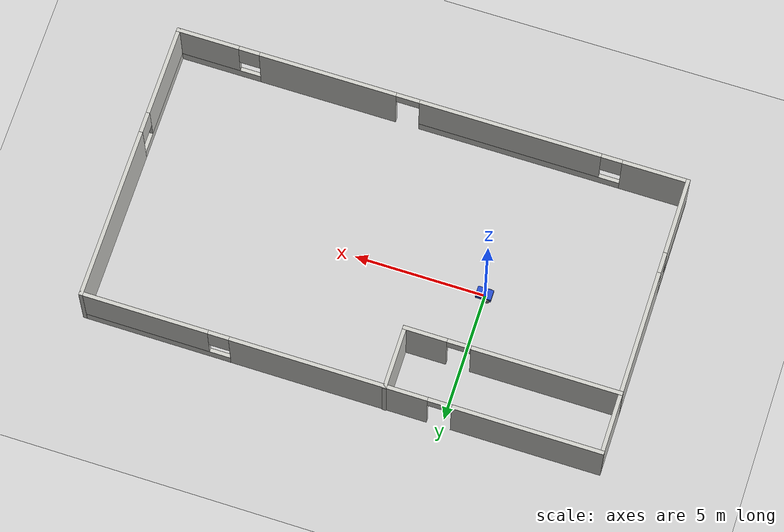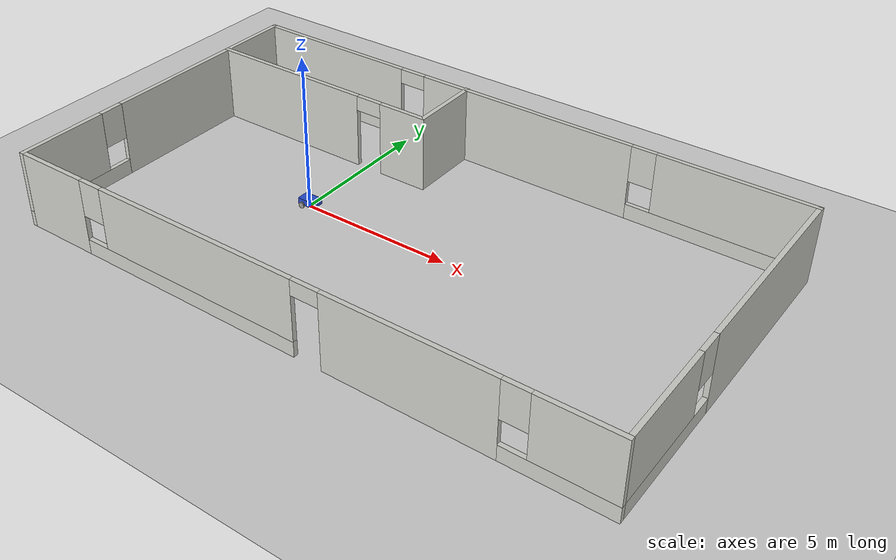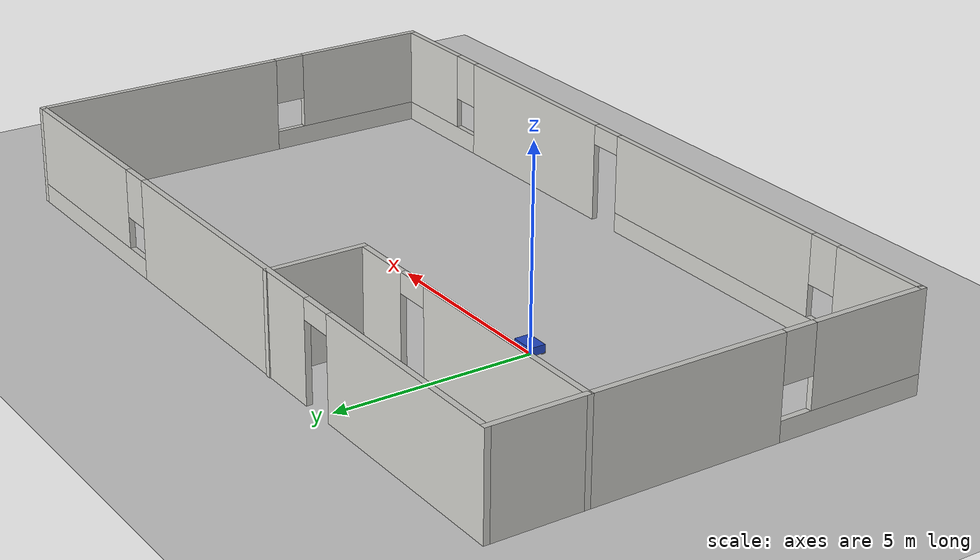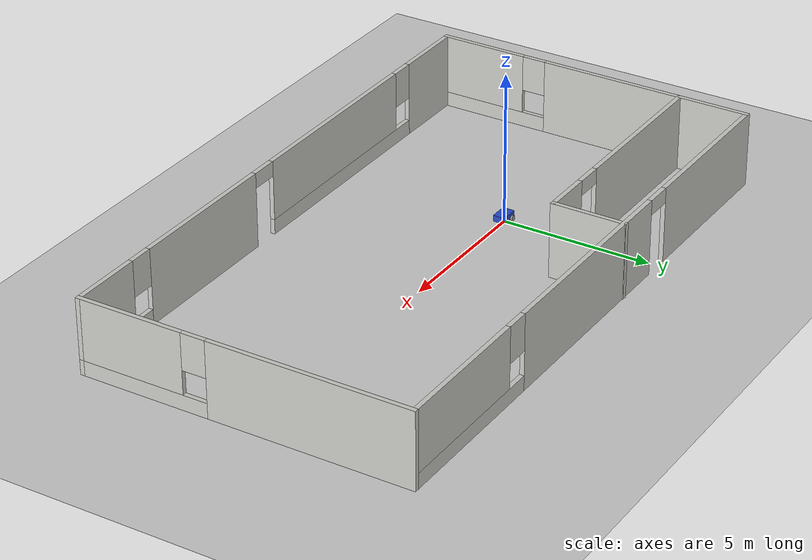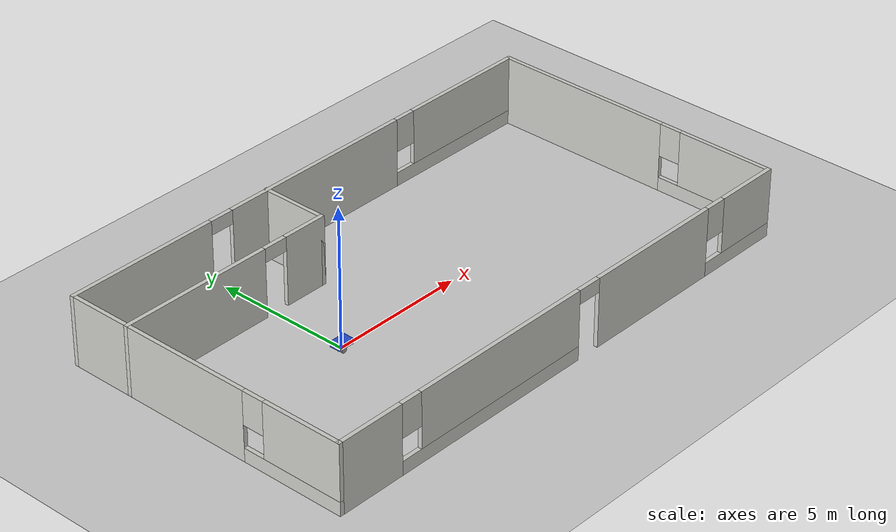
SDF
<sdf version="1.7">
 <world name="default">
  <light name="sun" type="directional">
   <pose>0 0 10 0 -0 0</pose>
   <diffuse>0.8 0.8 0.8 1</diffuse>
   <specular>0.2 0.2 0.2 1</specular>
   <attenuation>
    <range>1000</range>
    <constant>0.9</constant>
    <linear>0.01</linear>
    <quadratic>0.001</quadratic>
   </attenuation>
   <direction>-0.5 0.1 -0.9</direction>
   <spot><inner_angle>0</inner_angle><outer_angle>0</outer_angle><falloff>0</falloff></spot>
  </light>
  <model name="ground_plane">
   <static>1</static>
   <link name="link">
    <collision name="collision">
     <geometry><plane><normal>0 0 1</normal><size>100 100</size></plane></geometry>
     <surface><friction><ode><mu>100</mu><mu2>50</mu2></ode></friction></surface>
    </collision>
    <visual name="visual">
     <cast_shadows>0</cast_shadows>
     <geometry><plane><normal>0 0 1</normal><size>100 100</size></plane></geometry>
     <material>
      <script><uri>file://media/materials/scripts/gazebo.material</uri><name>Gazebo/Grey</name></script>
     </material>
    </visual>
   </link>
  </model>
  <gravity>0 0 -9.8</gravity>
  <magnetic_field>6e-06 2.3e-05 -4.2e-05</magnetic_field>
  <atmosphere type="adiabatic"/>
  <physics type="ode">
   <max_step_size>0.001</max_step_size>
   <real_time_factor>1</real_time_factor>
   <real_time_update_rate>1000</real_time_update_rate>
  </physics>
  <scene><ambient>0.4 0.4 0.4 1</ambient><background>0.7 0.7 0.7 1</background><shadows>1</shadows></scene>
  <audio><device>default</device></audio>
  <spherical_coordinates>
   <surface_model>EARTH_WGS84</surface_model>
   <latitude_deg>0</latitude_deg>
   <longitude_deg>0</longitude_deg>
   <elevation>0</elevation>
   <heading_deg>0</heading_deg>
  </spherical_coordinates>
  <model name="my_robot">
   <link name="base_footprint">
    <inertial>
     <pose>0.018182 0 0.186364 0 -0 0</pose>
     <mass>5.5</mass>
     <inertia>
      <ixx>0.678894</ixx>
      <ixy>0</ixy>
      <ixz>0.0136364</ixz>
      <iyy>0.897076</iyy>
      <iyz>0</iyz>
      <izz>0.353515</izz>
     </inertia>
    </inertial>
    <collision name="base_footprint_fixed_joint_lump__base_link_collision">
     <pose>0 0 0.2 0 -0 0</pose>
     <geometry><box><size>0.6 0.4 0.2</size></box></geometry>
    </collision>
    <collision name="base_footprint_fixed_joint_lump__caster_wheel_link_collision_1">
     <pose>0.2 0 0.05 0 -0 0</pose>
     <geometry><sphere><radius>0.05</radius></sphere></geometry>
     <surface><friction><ode><mu2>0.1</mu2></ode></friction></surface>
    </collision>
    <visual name="base_footprint_fixed_joint_lump__base_link_visual">
     <pose>0 0 0.2 0 -0 0</pose>
     <geometry><box><size>0.6 0.4 0.2</size></box></geometry>
     <material>
      <script><name>Gazebo/Blue</name><uri>file://media/materials/scripts/gazebo.material</uri></script>
     </material>
    </visual>
    <visual name="base_footprint_fixed_joint_lump__caster_wheel_link_visual_1">
     <pose>0.2 0 0.05 0 -0 0</pose>
     <geometry><sphere><radius>0.05</radius></sphere></geometry>
     <material>
      <script><name>Gazebo/Grey</name><uri>file://media/materials/scripts/gazebo.material</uri></script>
     </material>
    </visual>
    <mul value="0.1"/>
   </link>
   <joint name="base_left_wheel_joint" type="revolute">
    <pose relative_to="base_footprint">-0.15 0.225 0.1 0 -0 0</pose>
    <parent>base_footprint</parent>
    <child>left_wheel_link</child>
    <axis>
     <xyz>0 1 0</xyz>
     <limit><lower>-1e+16</lower><upper>1e+16</upper></limit>
     <dynamics><spring_reference>0</spring_reference><spring_stiffness>0</spring_stiffness></dynamics>
    </axis>
   </joint>
   <link name="left_wheel_link">
    <pose relative_to="base_left_wheel_joint">0 0 0 0 -0 0</pose>
    <inertial>
     <pose>0 0 0 1.5708 -0 0</pose>
     <mass>1</mass>
     <inertia><ixx>0.0108333</ixx><ixy>0</ixy><ixz>0</ixz><iyy>0.0108333</iyy><iyz>0</iyz><izz>0.02</izz></inertia>
    </inertial>
    <collision name="left_wheel_link_collision">
     <pose>0 0 0 1.5708 -0 0</pose>
     <geometry><cylinder><length>0.05</length><radius>0.1</radius></cylinder></geometry>
    </collision>
    <visual name="left_wheel_link_visual">
     <pose>0 0 0 1.5708 -0 0</pose>
     <geometry><cylinder><length>0.05</length><radius>0.1</radius></cylinder></geometry>
     <material>
      <script><name>Gazebo/Grey</name><uri>file://media/materials/scripts/gazebo.material</uri></script>
     </material>
    </visual>
   </link>
   <joint name="base_right_wheel_joint" type="revolute">
    <pose relative_to="base_footprint">-0.15 -0.225 0.1 0 -0 0</pose>
    <parent>base_footprint</parent>
    <child>right_wheel_link</child>
    <axis>
     <xyz>0 1 0</xyz>
     <limit><lower>-1e+16</lower><upper>1e+16</upper></limit>
     <dynamics><spring_reference>0</spring_reference><spring_stiffness>0</spring_stiffness></dynamics>
    </axis>
   </joint>
   <link name="right_wheel_link">
    <pose relative_to="base_right_wheel_joint">0 0 0 0 -0 0</pose>
    <inertial>
     <pose>0 0 0 1.5708 -0 0</pose>
     <mass>1</mass>
     <inertia><ixx>0.0108333</ixx><ixy>0</ixy><ixz>0</ixz><iyy>0.0108333</iyy><iyz>0</iyz><izz>0.02</izz></inertia>
    </inertial>
    <collision name="right_wheel_link_collision">
     <pose>0 0 0 1.5708 -0 0</pose>
     <geometry><cylinder><length>0.05</length><radius>0.1</radius></cylinder></geometry>
    </collision>
    <visual name="right_wheel_link_visual">
     <pose>0 0 0 1.5708 -0 0</pose>
     <geometry><cylinder><length>0.05</length><radius>0.1</radius></cylinder></geometry>
     <material>
      <script><name>Gazebo/Grey</name><uri>file://media/materials/scripts/gazebo.material</uri></script>
     </material>
    </visual>
   </link>
   <static>0</static>
   <plugin name="diff_drive_control" filename="libgazebo_ros_diff_drive.so">
    <update_rate>50</update_rate>
    <left_joint>base_left_wheel_joint</left_joint>
    <right_joint>base_right_wheel_joint</right_joint>
    <wheel_separation>0.45</wheel_separation>
    <wheel_diameter>0.2</wheel_diameter>
    <publish_odom>1</publish_odom>
    <publish_odom_tf>1</publish_odom_tf>
    <publish_wheel_tf>1</publish_wheel_tf>
    <odometry_topic>odom</odometry_topic>
    <odometry_frame>odom</odometry_frame>
    <robot_base_frame>base_footprint</robot_base_frame>
   </plugin>
   <pose>0.023025 0.001405 0 0 0 -0.004964</pose>
  </model>
  <model name="Test">
   <pose>3.87632 -0.194095 0 0 -0 0</pose>
   <link name="Wall_11">
    <pose>-5.75 3.0869 0 0 -0 0</pose>
    <visual name="Wall_11_Visual_0">
     <pose>-1.28845 0 1.25 0 -0 0</pose>
     <geometry><box><size>5.67311 0.15 2.5</size></box></geometry>
     <material>
      <script><uri>file://media/materials/scripts/gazebo.material</uri><name>Gazebo/CeilingTiled</name></script>
      <ambient>1 1 1 1</ambient>
     </material>
     <meta><layer>0</layer></meta>
    </visual>
    <collision name="Wall_11_Collision_0">
     <geometry><box><size>5.67311 0.15 2.5</size></box></geometry>
     <pose>-1.28845 0 1.25 0 -0 0</pose>
    </collision>
    <visual name="Wall_11_Visual_1">
     <pose>3.28655 0 1.25 0 -0 0</pose>
     <geometry><box><size>1.67689 0.15 2.5</size></box></geometry>
     <material>
      <script><uri>file://media/materials/scripts/gazebo.material</uri><name>Gazebo/CeilingTiled</name></script>
      <ambient>1 1 1 1</ambient>
     </material>
     <meta><layer>0</layer></meta>
    </visual>
    <collision name="Wall_11_Collision_1">
     <geometry><box><size>1.67689 0.15 2.5</size></box></geometry>
     <pose>3.28655 0 1.25 0 -0 0</pose>
    </collision>
    <visual name="Wall_11_Visual_2">
     <pose>1.99811 0 2.25 0 -0 0</pose>
     <geometry><box><size>0.9 0.15 0.5</size></box></geometry>
     <material>
      <script><uri>file://media/materials/scripts/gazebo.material</uri><name>Gazebo/CeilingTiled</name></script>
      <ambient>1 1 1 1</ambient>
     </material>
     <meta><layer>0</layer></meta>
    </visual>
    <collision name="Wall_11_Collision_2">
     <geometry><box><size>0.9 0.15 0.5</size></box></geometry>
     <pose>1.99811 0 2.25 0 -0 0</pose>
    </collision>
   </link>
   <link name="Wall_12">
    <collision name="Wall_12_Collision">
     <geometry><box><size>2.5 0.15 2.5</size></box></geometry>
     <pose>0 0 1.25 0 -0 0</pose>
    </collision>
    <visual name="Wall_12_Visual">
     <pose>0 0 1.25 0 -0 0</pose>
     <geometry><box><size>2.5 0.15 2.5</size></box></geometry>
     <material>
      <script><uri>file://media/materials/scripts/gazebo.material</uri><name>Gazebo/CeilingTiled</name></script>
      <ambient>1 1 1 1</ambient>
     </material>
     <meta><layer>0</layer></meta>
    </visual>
    <pose>-1.7 4.2619 0 0 -0 1.5708</pose>
   </link>
   <link name="Wall_5">
    <pose>-9.8 -0.011902 0 0 -0 -1.5708</pose>
    <visual name="Wall_5_Visual_0">
     <pose>-1.89406 0 1.25 0 -0 0</pose>
     <geometry><box><size>7.21187 0.15 2.5</size></box></geometry>
     <material>
      <script><uri>file://media/materials/scripts/gazebo.material</uri><name>Gazebo/CeilingTiled</name></script>
      <ambient>1 1 1 1</ambient>
     </material>
     <meta><layer>0</layer></meta>
    </visual>
    <collision name="Wall_5_Collision_0">
     <geometry><box><size>7.21187 0.15 2.5</size></box></geometry>
     <pose>-1.89406 0 1.25 0 -0 0</pose>
    </collision>
    <visual name="Wall_5_Visual_1">
     <pose>3.60594 0 0.25 0 -0 0</pose>
     <geometry><box><size>3.78813 0.15 0.5</size></box></geometry>
     <material>
      <script><uri>file://media/materials/scripts/gazebo.material</uri><name>Gazebo/CeilingTiled</name></script>
      <ambient>1 1 1 1</ambient>
     </material>
     <meta><layer>0</layer></meta>
    </visual>
    <collision name="Wall_5_Collision_1">
     <geometry><box><size>3.78813 0.15 0.5</size></box></geometry>
     <pose>3.60594 0 0.25 0 -0 0</pose>
    </collision>
    <visual name="Wall_5_Visual_2">
     <pose>4.00594 0 1.5 0 -0 0</pose>
     <geometry><box><size>2.98813 0.15 2</size></box></geometry>
     <material>
      <script><uri>file://media/materials/scripts/gazebo.material</uri><name>Gazebo/CeilingTiled</name></script>
      <ambient>1 1 1 1</ambient>
     </material>
     <meta><layer>0</layer></meta>
    </visual>
    <collision name="Wall_5_Collision_2">
     <geometry><box><size>2.98813 0.15 2</size></box></geometry>
     <pose>4.00594 0 1.5 0 -0 0</pose>
    </collision>
    <visual name="Wall_5_Visual_3">
     <pose>2.11187 0 1.9 0 -0 0</pose>
     <geometry><box><size>0.8 0.15 1.2</size></box></geometry>
     <material>
      <script><uri>file://media/materials/scripts/gazebo.material</uri><name>Gazebo/CeilingTiled</name></script>
      <ambient>1 1 1 1</ambient>
     </material>
     <meta><layer>0</layer></meta>
    </visual>
    <collision name="Wall_5_Collision_3">
     <geometry><box><size>0.8 0.15 1.2</size></box></geometry>
     <pose>2.11187 0 1.9 0 -0 0</pose>
    </collision>
   </link>
   <link name="Wall_6">
    <pose>0 -5.4369 0 0 -0 0</pose>
    <visual name="Wall_6_Visual_0">
     <pose>-8.59526 0 1.25 0 -0 0</pose>
     <geometry><box><size>2.55948 0.15 2.5</size></box></geometry>
     <material>
      <script><uri>file://media/materials/scripts/gazebo.material</uri><name>Gazebo/CeilingTiled</name></script>
      <ambient>1 1 1 1</ambient>
     </material>
     <meta><layer>0</layer></meta>
    </visual>
    <collision name="Wall_6_Collision_0">
     <geometry><box><size>2.55948 0.15 2.5</size></box></geometry>
     <pose>-8.59526 0 1.25 0 -0 0</pose>
    </collision>
    <visual name="Wall_6_Visual_1">
     <pose>3.99608 0 1.25 0 -0 0</pose>
     <geometry><box><size>5.29116 0.15 2.5</size></box></geometry>
     <material>
      <script><uri>file://media/materials/scripts/gazebo.material</uri><name>Gazebo/CeilingTiled</name></script>
      <ambient>1 1 1 1</ambient>
     </material>
     <meta><layer>0</layer></meta>
    </visual>
    <collision name="Wall_6_Collision_1">
     <geometry><box><size>5.29116 0.15 2.5</size></box></geometry>
     <pose>3.99608 0 1.25 0 -0 0</pose>
    </collision>
    <visual name="Wall_6_Visual_2">
     <pose>-3.43251 0 0.25 0 -0 0</pose>
     <geometry><box><size>7.76602 0.15 0.5</size></box></geometry>
     <material>
      <script><uri>file://media/materials/scripts/gazebo.material</uri><name>Gazebo/CeilingTiled</name></script>
      <ambient>1 1 1 1</ambient>
     </material>
     <meta><layer>0</layer></meta>
    </visual>
    <collision name="Wall_6_Collision_2">
     <geometry><box><size>7.76602 0.15 0.5</size></box></geometry>
     <pose>-3.43251 0 0.25 0 -0 0</pose>
    </collision>
    <visual name="Wall_6_Visual_3">
     <pose>8.25833 0 0.25 0 -0 0</pose>
     <geometry><box><size>3.23334 0.15 0.5</size></box></geometry>
     <material>
      <script><uri>file://media/materials/scripts/gazebo.material</uri><name>Gazebo/CeilingTiled</name></script>
      <ambient>1 1 1 1</ambient>
     </material>
     <meta><layer>0</layer></meta>
    </visual>
    <collision name="Wall_6_Collision_3">
     <geometry><box><size>3.23334 0.15 0.5</size></box></geometry>
     <pose>8.25833 0 0.25 0 -0 0</pose>
    </collision>
    <visual name="Wall_6_Visual_4">
     <pose>-3.03251 0 1.5 0 -0 0</pose>
     <geometry><box><size>6.96602 0.15 2</size></box></geometry>
     <material>
      <script><uri>file://media/materials/scripts/gazebo.material</uri><name>Gazebo/CeilingTiled</name></script>
      <ambient>1 1 1 1</ambient>
     </material>
     <meta><layer>0</layer></meta>
    </visual>
    <collision name="Wall_6_Collision_4">
     <geometry><box><size>6.96602 0.15 2</size></box></geometry>
     <pose>-3.03251 0 1.5 0 -0 0</pose>
    </collision>
    <visual name="Wall_6_Visual_5">
     <pose>-3.03251 0 1.5 0 -0 0</pose>
     <geometry><box><size>6.96602 0.15 2</size></box></geometry>
     <material>
      <script><uri>file://media/materials/scripts/gazebo.material</uri><name>Gazebo/CeilingTiled</name></script>
      <ambient>1 1 1 1</ambient>
     </material>
     <meta><layer>0</layer></meta>
    </visual>
    <collision name="Wall_6_Collision_5">
     <geometry><box><size>6.96602 0.15 2</size></box></geometry>
     <pose>-3.03251 0 1.5 0 -0 0</pose>
    </collision>
    <visual name="Wall_6_Visual_6">
     <pose>8.65833 0 1.5 0 -0 0</pose>
     <geometry><box><size>2.43334 0.15 2</size></box></geometry>
     <material>
      <script><uri>file://media/materials/scripts/gazebo.material</uri><name>Gazebo/CeilingTiled</name></script>
      <ambient>1 1 1 1</ambient>
     </material>
     <meta><layer>0</layer></meta>
    </visual>
    <collision name="Wall_6_Collision_6">
     <geometry><box><size>2.43334 0.15 2</size></box></geometry>
     <pose>8.65833 0 1.5 0 -0 0</pose>
    </collision>
    <visual name="Wall_6_Visual_7">
     <pose>-6.91552 0 1.9 0 -0 0</pose>
     <geometry><box><size>0.8 0.15 1.2</size></box></geometry>
     <material>
      <script><uri>file://media/materials/scripts/gazebo.material</uri><name>Gazebo/CeilingTiled</name></script>
      <ambient>1 1 1 1</ambient>
     </material>
     <meta><layer>0</layer></meta>
    </visual>
    <collision name="Wall_6_Collision_7">
     <geometry><box><size>0.8 0.15 1.2</size></box></geometry>
     <pose>-6.91552 0 1.9 0 -0 0</pose>
    </collision>
    <visual name="Wall_6_Visual_8">
     <pose>7.04166 0 1.9 0 -0 0</pose>
     <geometry><box><size>0.8 0.15 1.2</size></box></geometry>
     <material>
      <script><uri>file://media/materials/scripts/gazebo.material</uri><name>Gazebo/CeilingTiled</name></script>
      <ambient>1 1 1 1</ambient>
     </material>
     <meta><layer>0</layer></meta>
    </visual>
    <collision name="Wall_6_Collision_8">
     <geometry><box><size>0.8 0.15 1.2</size></box></geometry>
     <pose>7.04166 0 1.9 0 -0 0</pose>
    </collision>
    <visual name="Wall_6_Visual_9">
     <pose>0.9005 0 2.25 0 -0 0</pose>
     <geometry><box><size>0.9 0.15 0.5</size></box></geometry>
     <material>
      <script><uri>file://media/materials/scripts/gazebo.material</uri><name>Gazebo/CeilingTiled</name></script>
      <ambient>1 1 1 1</ambient>
     </material>
     <meta><layer>0</layer></meta>
    </visual>
    <collision name="Wall_6_Collision_9">
     <geometry><box><size>0.9 0.15 0.5</size></box></geometry>
     <pose>0.9005 0 2.25 0 -0 0</pose>
    </collision>
    <visual name="Wall_6_Visual_10">
     <pose>0.9005 0 2.25 0 -0 0</pose>
     <geometry><box><size>0.9 0.15 0.5</size></box></geometry>
     <material>
      <script><uri>file://media/materials/scripts/gazebo.material</uri><name>Gazebo/CeilingTiled</name></script>
      <ambient>1 1 1 1</ambient>
     </material>
     <meta><layer>0</layer></meta>
    </visual>
    <collision name="Wall_6_Collision_10">
     <geometry><box><size>0.9 0.15 0.5</size></box></geometry>
     <pose>0.9005 0 2.25 0 -0 0</pose>
    </collision>
   </link>
   <link name="Wall_8">
    <pose>0 5.4131 0 0 -0 0</pose>
    <visual name="Wall_8_Visual_0">
     <pose>-7.03845 0 1.25 0 -0 0</pose>
     <geometry><box><size>5.67311 0.15 2.5</size></box></geometry>
     <material>
      <script><uri>file://media/materials/scripts/gazebo.material</uri><name>Gazebo/CeilingTiled</name></script>
      <ambient>1 1 1 1</ambient>
     </material>
     <meta><layer>0</layer></meta>
    </visual>
    <collision name="Wall_8_Collision_0">
     <geometry><box><size>5.67311 0.15 2.5</size></box></geometry>
     <pose>-7.03845 0 1.25 0 -0 0</pose>
    </collision>
    <visual name="Wall_8_Visual_1">
     <pose>0.436999 0 1.25 0 -0 0</pose>
     <geometry><box><size>7.47778 0.15 2.5</size></box></geometry>
     <material>
      <script><uri>file://media/materials/scripts/gazebo.material</uri><name>Gazebo/CeilingTiled</name></script>
      <ambient>1 1 1 1</ambient>
     </material>
     <meta><layer>0</layer></meta>
    </visual>
    <collision name="Wall_8_Collision_1">
     <geometry><box><size>7.47778 0.15 2.5</size></box></geometry>
     <pose>0.436999 0 1.25 0 -0 0</pose>
    </collision>
    <visual name="Wall_8_Visual_2">
     <pose>7.02545 0 0.25 0 -0 0</pose>
     <geometry><box><size>5.69911 0.15 0.5</size></box></geometry>
     <material>
      <script><uri>file://media/materials/scripts/gazebo.material</uri><name>Gazebo/CeilingTiled</name></script>
      <ambient>1 1 1 1</ambient>
     </material>
     <meta><layer>0</layer></meta>
    </visual>
    <collision name="Wall_8_Collision_2">
     <geometry><box><size>5.69911 0.15 0.5</size></box></geometry>
     <pose>7.02545 0 0.25 0 -0 0</pose>
    </collision>
    <visual name="Wall_8_Visual_3">
     <pose>7.42544 0 1.5 0 -0 0</pose>
     <geometry><box><size>4.89911 0.15 2</size></box></geometry>
     <material>
      <script><uri>file://media/materials/scripts/gazebo.material</uri><name>Gazebo/CeilingTiled</name></script>
      <ambient>1 1 1 1</ambient>
     </material>
     <meta><layer>0</layer></meta>
    </visual>
    <collision name="Wall_8_Collision_3">
     <geometry><box><size>4.89911 0.15 2</size></box></geometry>
     <pose>7.42544 0 1.5 0 -0 0</pose>
    </collision>
    <visual name="Wall_8_Visual_4">
     <pose>4.57589 0 1.9 0 -0 0</pose>
     <geometry><box><size>0.8 0.15 1.2</size></box></geometry>
     <material>
      <script><uri>file://media/materials/scripts/gazebo.material</uri><name>Gazebo/CeilingTiled</name></script>
      <ambient>1 1 1 1</ambient>
     </material>
     <meta><layer>0</layer></meta>
    </visual>
    <collision name="Wall_8_Collision_4">
     <geometry><box><size>0.8 0.15 1.2</size></box></geometry>
     <pose>4.57589 0 1.9 0 -0 0</pose>
    </collision>
    <visual name="Wall_8_Visual_5">
     <pose>-3.75189 0 2.25 0 -0 0</pose>
     <geometry><box><size>0.9 0.15 0.5</size></box></geometry>
     <material>
      <script><uri>file://media/materials/scripts/gazebo.material</uri><name>Gazebo/CeilingTiled</name></script>
      <ambient>1 1 1 1</ambient>
     </material>
     <meta><layer>0</layer></meta>
    </visual>
    <collision name="Wall_8_Collision_5">
     <geometry><box><size>0.9 0.15 0.5</size></box></geometry>
     <pose>-3.75189 0 2.25 0 -0 0</pose>
    </collision>
   </link>
   <link name="Wall_9">
    <pose>9.8 -0.011902 0 0 -0 -1.5708</pose>
    <visual name="Wall_9_Visual_0">
     <pose>-2.17321 0 1.25 0 -0 0</pose>
     <geometry><box><size>6.65359 0.15 2.5</size></box></geometry>
     <material>
      <script><uri>file://media/materials/scripts/gazebo.material</uri><name>Gazebo/CeilingTiled</name></script>
      <ambient>1 1 1 1</ambient>
     </material>
     <meta><layer>0</layer></meta>
    </visual>
    <collision name="Wall_9_Collision_0">
     <geometry><box><size>6.65359 0.15 2.5</size></box></geometry>
     <pose>-2.17321 0 1.25 0 -0 0</pose>
    </collision>
    <visual name="Wall_9_Visual_1">
     <pose>3.32679 0 0.25 0 -0 0</pose>
     <geometry><box><size>4.34641 0.15 0.5</size></box></geometry>
     <material>
      <script><uri>file://media/materials/scripts/gazebo.material</uri><name>Gazebo/CeilingTiled</name></script>
      <ambient>1 1 1 1</ambient>
     </material>
     <meta><layer>0</layer></meta>
    </visual>
    <collision name="Wall_9_Collision_1">
     <geometry><box><size>4.34641 0.15 0.5</size></box></geometry>
     <pose>3.32679 0 0.25 0 -0 0</pose>
    </collision>
    <visual name="Wall_9_Visual_2">
     <pose>3.72679 0 1.5 0 -0 0</pose>
     <geometry><box><size>3.54641 0.15 2</size></box></geometry>
     <material>
      <script><uri>file://media/materials/scripts/gazebo.material</uri><name>Gazebo/CeilingTiled</name></script>
      <ambient>1 1 1 1</ambient>
     </material>
     <meta><layer>0</layer></meta>
    </visual>
    <collision name="Wall_9_Collision_2">
     <geometry><box><size>3.54641 0.15 2</size></box></geometry>
     <pose>3.72679 0 1.5 0 -0 0</pose>
    </collision>
    <visual name="Wall_9_Visual_3">
     <pose>1.55359 0 1.9 0 -0 0</pose>
     <geometry><box><size>0.8 0.15 1.2</size></box></geometry>
     <material>
      <script><uri>file://media/materials/scripts/gazebo.material</uri><name>Gazebo/CeilingTiled</name></script>
      <ambient>1 1 1 1</ambient>
     </material>
     <meta><layer>0</layer></meta>
    </visual>
    <collision name="Wall_9_Collision_3">
     <geometry><box><size>0.8 0.15 1.2</size></box></geometry>
     <pose>1.55359 0 1.9 0 -0 0</pose>
    </collision>
   </link>
   <static>1</static>
  </model>
 </world>
</sdf>
